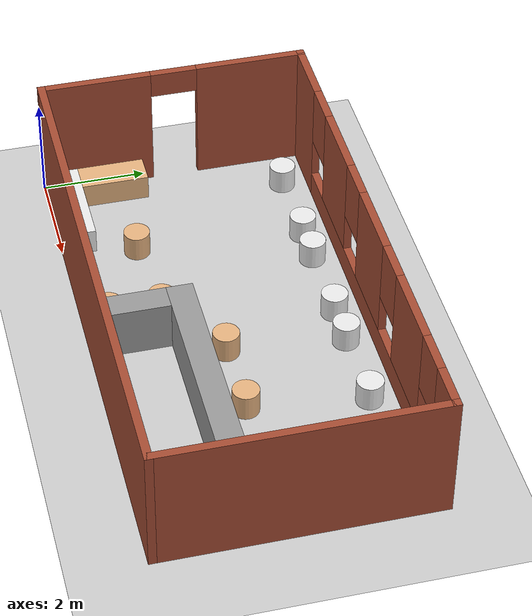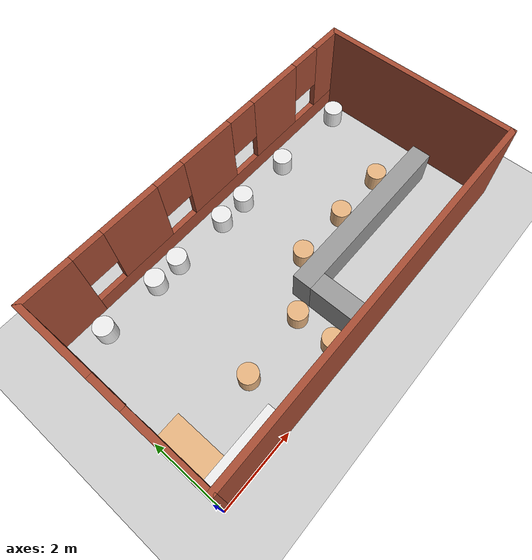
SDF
<sdf version="1.6">
 <world name="default">
  <light name="sun" type="directional">
   <pose>0 0 10 0 -0 0</pose>
   <diffuse>0.8 0.8 0.8 1</diffuse>
   <specular>0.2 0.2 0.2 1</specular>
   <attenuation>
    <range>1000</range>
    <constant>0.9</constant>
    <linear>0.01</linear>
    <quadratic>0.001</quadratic>
   </attenuation>
   <direction>-0.5 0.1 -0.9</direction>
  </light>
  <model name="ground_plane">
   <static>1</static>
   <link name="link">
    <collision name="collision">
     <geometry><plane><normal>0 0 1</normal><size>100 100</size></plane></geometry>
     <surface>
      <contact><collide_bitmask>65535</collide_bitmask></contact>
      <friction><ode><mu>100</mu><mu2>50</mu2></ode></friction>
     </surface>
    </collision>
    <visual name="visual">
     <cast_shadows>0</cast_shadows>
     <geometry><plane><normal>0 0 1</normal><size>100 100</size></plane></geometry>
     <material>
      <script><uri>file://media/materials/scripts/gazebo.material</uri><name>Gazebo/Grey</name></script>
     </material>
    </visual>
   </link>
  </model>
  <gravity>0 0 -9.8</gravity>
  <magnetic_field>6e-06 2.3e-05 -4.2e-05</magnetic_field>
  <atmosphere type="adiabatic"/>
  <physics name="default_physics" default="0" type="ode">
   <max_step_size>0.001</max_step_size>
   <real_time_factor>1</real_time_factor>
   <real_time_update_rate>1000</real_time_update_rate>
  </physics>
  <scene><ambient>0.4 0.4 0.4 1</ambient><background>0.7 0.7 0.7 1</background><shadows>1</shadows></scene>
  <audio><device>default</device></audio>
  <spherical_coordinates>
   <surface_model>EARTH_WGS84</surface_model>
   <latitude_deg>0</latitude_deg>
   <longitude_deg>0</longitude_deg>
   <elevation>0</elevation>
   <heading_deg>0</heading_deg>
  </spherical_coordinates>
  <model name="cafe1">
   <model name="cafe">
    <pose>1e-06 1e-06 0 0 -0 0</pose>
    <link name="Wall_0">
     <pose>-0 2.55 0 0 -0 0</pose>
     <visual name="Wall_0_Visual_0">
      <pose>-4.31575 0 1.25 0 -0 0</pose>
      <geometry><box><size>1.3685 0.15 2.5</size></box></geometry>
      <material>
       <script><uri>file://media/materials/scripts/gazebo.material</uri><name>Gazebo/Bricks</name></script>
       <ambient>1 1 1 1</ambient>
      </material>
      <meta><layer>0</layer></meta>
     </visual>
     <collision name="Wall_0_Collision_0">
      <geometry><box><size>1.3685 0.15 2.5</size></box></geometry>
      <pose>-4.31575 0 1.25 0 -0 0</pose>
     </collision>
     <visual name="Wall_0_Visual_1">
      <pose>0.684248 0 0.25 0 -0 0</pose>
      <geometry><box><size>8.6315 0.15 0.5</size></box></geometry>
      <material>
       <script><uri>file://media/materials/scripts/gazebo.material</uri><name>Gazebo/Bricks</name></script>
       <ambient>1 1 1 1</ambient>
      </material>
      <meta><layer>0</layer></meta>
     </visual>
     <collision name="Wall_0_Collision_1">
      <geometry><box><size>8.6315 0.15 0.5</size></box></geometry>
      <pose>0.684248 0 0.25 0 -0 0</pose>
     </collision>
     <visual name="Wall_0_Visual_2">
      <pose>-2.0815 0 1.5 0 -0 0</pose>
      <geometry><box><size>1.5 0.15 2</size></box></geometry>
      <material>
       <script><uri>file://media/materials/scripts/gazebo.material</uri><name>Gazebo/Bricks</name></script>
       <ambient>1 1 1 1</ambient>
      </material>
      <meta><layer>0</layer></meta>
     </visual>
     <collision name="Wall_0_Collision_2">
      <geometry><box><size>1.5 0.15 2</size></box></geometry>
      <pose>-2.0815 0 1.5 0 -0 0</pose>
     </collision>
     <visual name="Wall_0_Visual_3">
      <pose>0.218496 0 1.5 0 -0 0</pose>
      <geometry><box><size>1.5 0.15 2</size></box></geometry>
      <material>
       <script><uri>file://media/materials/scripts/gazebo.material</uri><name>Gazebo/Bricks</name></script>
       <ambient>1 1 1 1</ambient>
      </material>
      <meta><layer>0</layer></meta>
     </visual>
     <collision name="Wall_0_Collision_3">
      <geometry><box><size>1.5 0.15 2</size></box></geometry>
      <pose>0.218496 0 1.5 0 -0 0</pose>
     </collision>
     <visual name="Wall_0_Visual_4">
      <pose>2.5385 0 1.5 0 -0 0</pose>
      <geometry><box><size>1.54 0.15 2</size></box></geometry>
      <material>
       <script><uri>file://media/materials/scripts/gazebo.material</uri><name>Gazebo/Bricks</name></script>
       <ambient>1 1 1 1</ambient>
      </material>
      <meta><layer>0</layer></meta>
     </visual>
     <collision name="Wall_0_Collision_4">
      <geometry><box><size>1.54 0.15 2</size></box></geometry>
      <pose>2.5385 0 1.5 0 -0 0</pose>
     </collision>
     <visual name="Wall_0_Visual_5">
      <pose>4.55425 0 1.5 0 -0 0</pose>
      <geometry><box><size>0.891504 0.15 2</size></box></geometry>
      <material>
       <script><uri>file://media/materials/scripts/gazebo.material</uri><name>Gazebo/Bricks</name></script>
       <ambient>1 1 1 1</ambient>
      </material>
      <meta><layer>0</layer></meta>
     </visual>
     <collision name="Wall_0_Collision_5">
      <geometry><box><size>0.891504 0.15 2</size></box></geometry>
      <pose>4.55425 0 1.5 0 -0 0</pose>
     </collision>
     <visual name="Wall_0_Visual_6">
      <pose>-3.2315 0 1.9 0 -0 0</pose>
      <geometry><box><size>0.8 0.15 1.2</size></box></geometry>
      <material>
       <script><uri>file://media/materials/scripts/gazebo.material</uri><name>Gazebo/Bricks</name></script>
       <ambient>1 1 1 1</ambient>
      </material>
      <meta><layer>0</layer></meta>
     </visual>
     <collision name="Wall_0_Collision_6">
      <geometry><box><size>0.8 0.15 1.2</size></box></geometry>
      <pose>-3.2315 0 1.9 0 -0 0</pose>
     </collision>
     <visual name="Wall_0_Visual_7">
      <pose>-0.931504 0 1.9 0 -0 0</pose>
      <geometry><box><size>0.8 0.15 1.2</size></box></geometry>
      <material>
       <script><uri>file://media/materials/scripts/gazebo.material</uri><name>Gazebo/Bricks</name></script>
       <ambient>1 1 1 1</ambient>
      </material>
      <meta><layer>0</layer></meta>
     </visual>
     <collision name="Wall_0_Collision_7">
      <geometry><box><size>0.8 0.15 1.2</size></box></geometry>
      <pose>-0.931504 0 1.9 0 -0 0</pose>
     </collision>
     <visual name="Wall_0_Visual_8">
      <pose>1.3685 0 1.9 0 -0 0</pose>
      <geometry><box><size>0.8 0.15 1.2</size></box></geometry>
      <material>
       <script><uri>file://media/materials/scripts/gazebo.material</uri><name>Gazebo/Bricks</name></script>
       <ambient>1 1 1 1</ambient>
      </material>
      <meta><layer>0</layer></meta>
     </visual>
     <collision name="Wall_0_Collision_8">
      <geometry><box><size>0.8 0.15 1.2</size></box></geometry>
      <pose>1.3685 0 1.9 0 -0 0</pose>
     </collision>
     <visual name="Wall_0_Visual_9">
      <pose>3.7085 0 1.9 0 -0 0</pose>
      <geometry><box><size>0.8 0.15 1.2</size></box></geometry>
      <material>
       <script><uri>file://media/materials/scripts/gazebo.material</uri><name>Gazebo/Bricks</name></script>
       <ambient>1 1 1 1</ambient>
      </material>
      <meta><layer>0</layer></meta>
     </visual>
     <collision name="Wall_0_Collision_9">
      <geometry><box><size>0.8 0.15 1.2</size></box></geometry>
      <pose>3.7085 0 1.9 0 -0 0</pose>
     </collision>
    </link>
    <link name="Wall_2">
     <collision name="Wall_2_Collision">
      <geometry><box><size>5.25 0.15 2.5</size></box></geometry>
      <pose>0 0 1.25 0 -0 0</pose>
     </collision>
     <visual name="Wall_2_Visual">
      <pose>0 0 1.25 0 -0 0</pose>
      <geometry><box><size>5.25 0.15 2.5</size></box></geometry>
      <material>
       <script><uri>file://media/materials/scripts/gazebo.material</uri><name>Gazebo/Bricks</name></script>
       <ambient>1 1 1 1</ambient>
      </material>
      <meta><layer>0</layer></meta>
     </visual>
     <pose>4.925 0 0 0 -0 -1.5708</pose>
    </link>
    <link name="Wall_3">
     <collision name="Wall_3_Collision">
      <geometry><box><size>10 0.15 2.5</size></box></geometry>
      <pose>0 0 1.25 0 -0 0</pose>
     </collision>
     <visual name="Wall_3_Visual">
      <pose>0 0 1.25 0 -0 0</pose>
      <geometry><box><size>10 0.15 2.5</size></box></geometry>
      <material>
       <script><uri>file://media/materials/scripts/gazebo.material</uri><name>Gazebo/Bricks</name></script>
       <ambient>1 1 1 1</ambient>
      </material>
      <meta><layer>0</layer></meta>
     </visual>
     <pose>-0 -2.55 0 0 -0 3.14159</pose>
    </link>
    <link name="Wall_5">
     <pose>-4.925 0 0 0 -0 -1.5708</pose>
     <visual name="Wall_5_Visual_0">
      <pose>-1.54247 0 1.25 0 -0 0</pose>
      <geometry><box><size>2.16506 0.15 2.5</size></box></geometry>
      <material>
       <script><uri>file://media/materials/scripts/gazebo.material</uri><name>Gazebo/Bricks</name></script>
       <ambient>1 1 1 1</ambient>
      </material>
      <meta><layer>0</layer></meta>
     </visual>
     <collision name="Wall_5_Collision_0">
      <geometry><box><size>2.16506 0.15 2.5</size></box></geometry>
      <pose>-1.54247 0 1.25 0 -0 0</pose>
     </collision>
     <visual name="Wall_5_Visual_1">
      <pose>1.53253 0 1.25 0 -0 0</pose>
      <geometry><box><size>2.18494 0.15 2.5</size></box></geometry>
      <material>
       <script><uri>file://media/materials/scripts/gazebo.material</uri><name>Gazebo/Bricks</name></script>
       <ambient>1 1 1 1</ambient>
      </material>
      <meta><layer>0</layer></meta>
     </visual>
     <collision name="Wall_5_Collision_1">
      <geometry><box><size>2.18494 0.15 2.5</size></box></geometry>
      <pose>1.53253 0 1.25 0 -0 0</pose>
     </collision>
     <visual name="Wall_5_Visual_2">
      <pose>-0.009942 0 2.25 0 -0 0</pose>
      <geometry><box><size>0.9 0.15 0.5</size></box></geometry>
      <material>
       <script><uri>file://media/materials/scripts/gazebo.material</uri><name>Gazebo/Bricks</name></script>
       <ambient>1 1 1 1</ambient>
      </material>
      <meta><layer>0</layer></meta>
     </visual>
     <collision name="Wall_5_Collision_2">
      <geometry><box><size>0.9 0.15 0.5</size></box></geometry>
      <pose>-0.009942 0 2.25 0 -0 0</pose>
     </collision>
    </link>
    <link name="Wall_7">
     <collision name="Wall_7_Collision">
      <geometry><box><size>4.81 0.5 1</size></box></geometry>
      <pose>0 0 0.5 0 -0 0</pose>
     </collision>
     <visual name="Wall_7_Visual">
      <pose>0 0 0.5 0 -0 0</pose>
      <geometry><box><size>4.81 0.5 1</size></box></geometry>
      <material>
       <script><uri>file://media/materials/scripts/gazebo.material</uri><name>Gazebo/Grey</name></script>
       <ambient>1 1 1 1</ambient>
      </material>
      <meta><layer>0</layer></meta>
     </visual>
     <pose>1.9038 -0.870275 0 0 -0 0</pose>
    </link>
    <link name="Wall_9">
     <collision name="Wall_9_Collision">
      <geometry><box><size>2 0.5 1</size></box></geometry>
      <pose>0 0 0.5 0 -0 0</pose>
     </collision>
     <visual name="Wall_9_Visual">
      <pose>0 0 0.5 0 -0 0</pose>
      <geometry><box><size>2 0.5 1</size></box></geometry>
      <material>
       <script><uri>file://media/materials/scripts/gazebo.material</uri><name>Gazebo/Grey</name></script>
       <ambient>1 1 1 1</ambient>
      </material>
      <meta><layer>0</layer></meta>
     </visual>
     <pose>-0.2512 -1.62027 0 0 -0 -1.5708</pose>
    </link>
    <static>1</static>
   </model>
   <static>0</static>
   <pose>5.01694 2.61607 0 0 -0 0</pose>
  </model>
  <model name="chair">
   <link name="link_1">
    <inertial>
     <mass>1</mass>
     <inertia><ixx>0.145833</ixx><ixy>0</ixy><ixz>0</ixz><iyy>0.145833</iyy><iyz>0</iyz><izz>0.125</izz></inertia>
    </inertial>
    <visual name="visual">
     <geometry><cylinder><radius>0.25</radius><length>0.5</length></cylinder></geometry>
     <material>
      <lighting>1</lighting>
      <script><uri>file://media/materials/scripts/gazebo.material</uri><name>Gazebo/White</name></script>
      <shader type="vertex"><normal_map>__default__</normal_map></shader>
      <ambient>0.9 0.7 0.5 1</ambient>
      <diffuse>0.7 0.7 0.7 1</diffuse>
      <specular>0.01 0.01 0.01 1</specular>
      <emissive>0 0 0 1</emissive>
     </material>
    </visual>
    <collision name="collision">
     <geometry><cylinder><radius>0.25</radius><length>0.5</length></cylinder></geometry>
     <surface>
      <friction>
       <ode><mu>1</mu><mu2>1</mu2><fdir1>0 0 0</fdir1><slip1>0</slip1><slip2>0</slip2></ode>
       <torsional>
        <coefficient>1</coefficient>
        <patch_radius>0</patch_radius>
        <surface_radius>0</surface_radius>
        <use_patch_radius>1</use_patch_radius>
        <ode><slip>0</slip></ode>
       </torsional>
      </friction>
      <bounce><restitution_coefficient>0</restitution_coefficient><threshold>1e+06</threshold></bounce>
      <contact>
       <collide_without_contact>0</collide_without_contact>
       <collide_without_contact_bitmask>1</collide_without_contact_bitmask>
       <collide_bitmask>1</collide_bitmask>
       <ode>
        <soft_cfm>0</soft_cfm>
        <soft_erp>0.2</soft_erp>
        <kp>1e+13</kp>
        <kd>1</kd>
        <max_vel>0.01</max_vel>
        <min_depth>0</min_depth>
       </ode>
       <bullet>
        <split_impulse>1</split_impulse>
        <split_impulse_penetration_threshold>-0.01</split_impulse_penetration_threshold>
        <soft_cfm>0</soft_cfm>
        <soft_erp>0.2</soft_erp>
        <kp>1e+13</kp>
        <kd>1</kd>
       </bullet>
      </contact>
     </surface>
    </collision>
   </link>
   <link name="link_1_clone">
    <inertial>
     <mass>1</mass>
     <inertia><ixx>0.145833</ixx><ixy>0</ixy><ixz>0</ixz><iyy>0.145833</iyy><iyz>0</iyz><izz>0.125</izz></inertia>
    </inertial>
    <pose>-2.2 0 0 0 -0 0</pose>
    <visual name="visual">
     <geometry><cylinder><radius>0.25</radius><length>0.5</length></cylinder></geometry>
     <material>
      <lighting>1</lighting>
      <script><uri>file://media/materials/scripts/gazebo.material</uri><name>Gazebo/White</name></script>
      <shader type="vertex"><normal_map>__default__</normal_map></shader>
      <ambient>0.9 0.7 0.5 1</ambient>
      <diffuse>0.7 0.7 0.7 1</diffuse>
      <specular>0.01 0.01 0.01 1</specular>
      <emissive>0 0 0 1</emissive>
     </material>
    </visual>
    <collision name="collision">
     <geometry><cylinder><radius>0.25</radius><length>0.5</length></cylinder></geometry>
     <surface>
      <friction>
       <ode><mu>1</mu><mu2>1</mu2><fdir1>0 0 0</fdir1><slip1>0</slip1><slip2>0</slip2></ode>
       <torsional>
        <coefficient>1</coefficient>
        <patch_radius>0</patch_radius>
        <surface_radius>0</surface_radius>
        <use_patch_radius>1</use_patch_radius>
        <ode><slip>0</slip></ode>
       </torsional>
      </friction>
      <bounce><restitution_coefficient>0</restitution_coefficient><threshold>1e+06</threshold></bounce>
      <contact>
       <collide_without_contact>0</collide_without_contact>
       <collide_without_contact_bitmask>1</collide_without_contact_bitmask>
       <collide_bitmask>1</collide_bitmask>
       <ode>
        <soft_cfm>0</soft_cfm>
        <soft_erp>0.2</soft_erp>
        <kp>1e+13</kp>
        <kd>1</kd>
        <max_vel>0.01</max_vel>
        <min_depth>0</min_depth>
       </ode>
       <bullet>
        <split_impulse>1</split_impulse>
        <split_impulse_penetration_threshold>-0.01</split_impulse_penetration_threshold>
        <soft_cfm>0</soft_cfm>
        <soft_erp>0.2</soft_erp>
        <kp>1e+13</kp>
        <kd>1</kd>
       </bullet>
      </contact>
     </surface>
    </collision>
   </link>
   <link name="link_1_clone_0">
    <inertial>
     <mass>1</mass>
     <inertia><ixx>0.145833</ixx><ixy>0</ixy><ixz>0</ixz><iyy>0.145833</iyy><iyz>0</iyz><izz>0.125</izz></inertia>
    </inertial>
    <pose>-3.75 0 0 0 -0 0</pose>
    <visual name="visual">
     <geometry><cylinder><radius>0.25</radius><length>0.5</length></cylinder></geometry>
     <material>
      <lighting>1</lighting>
      <script><uri>file://media/materials/scripts/gazebo.material</uri><name>Gazebo/White</name></script>
      <shader type="vertex"><normal_map>__default__</normal_map></shader>
      <ambient>0.9 0.7 0.5 1</ambient>
      <diffuse>0.7 0.7 0.7 1</diffuse>
      <specular>0.01 0.01 0.01 1</specular>
      <emissive>0 0 0 1</emissive>
     </material>
    </visual>
    <collision name="collision">
     <geometry><cylinder><radius>0.25</radius><length>0.5</length></cylinder></geometry>
     <surface>
      <friction>
       <ode><mu>1</mu><mu2>1</mu2><fdir1>0 0 0</fdir1><slip1>0</slip1><slip2>0</slip2></ode>
       <torsional>
        <coefficient>1</coefficient>
        <patch_radius>0</patch_radius>
        <surface_radius>0</surface_radius>
        <use_patch_radius>1</use_patch_radius>
        <ode><slip>0</slip></ode>
       </torsional>
      </friction>
      <bounce><restitution_coefficient>0</restitution_coefficient><threshold>1e+06</threshold></bounce>
      <contact>
       <collide_without_contact>0</collide_without_contact>
       <collide_without_contact_bitmask>1</collide_without_contact_bitmask>
       <collide_bitmask>1</collide_bitmask>
       <ode>
        <soft_cfm>0</soft_cfm>
        <soft_erp>0.2</soft_erp>
        <kp>1e+13</kp>
        <kd>1</kd>
        <max_vel>0.01</max_vel>
        <min_depth>0</min_depth>
       </ode>
       <bullet>
        <split_impulse>1</split_impulse>
        <split_impulse_penetration_threshold>-0.01</split_impulse_penetration_threshold>
        <soft_cfm>0</soft_cfm>
        <soft_erp>0.2</soft_erp>
        <kp>1e+13</kp>
        <kd>1</kd>
       </bullet>
      </contact>
     </surface>
    </collision>
   </link>
   <link name="link_1_clone_0_clone">
    <inertial>
     <mass>1</mass>
     <inertia><ixx>0.145833</ixx><ixy>0</ixy><ixz>0</ixz><iyy>0.145833</iyy><iyz>0</iyz><izz>0.125</izz></inertia>
    </inertial>
    <pose>-4.55 0 0 0 -0 0</pose>
    <visual name="visual">
     <geometry><cylinder><radius>0.25</radius><length>0.5</length></cylinder></geometry>
     <material>
      <lighting>1</lighting>
      <script><uri>file://media/materials/scripts/gazebo.material</uri><name>Gazebo/White</name></script>
      <shader type="vertex"><normal_map>__default__</normal_map></shader>
      <ambient>0.9 0.7 0.5 1</ambient>
      <diffuse>0.7 0.7 0.7 1</diffuse>
      <specular>0.01 0.01 0.01 1</specular>
      <emissive>0 0 0 1</emissive>
     </material>
    </visual>
    <collision name="collision">
     <geometry><cylinder><radius>0.25</radius><length>0.5</length></cylinder></geometry>
     <surface>
      <friction>
       <ode><mu>1</mu><mu2>1</mu2><fdir1>0 0 0</fdir1><slip1>0</slip1><slip2>0</slip2></ode>
       <torsional>
        <coefficient>1</coefficient>
        <patch_radius>0</patch_radius>
        <surface_radius>0</surface_radius>
        <use_patch_radius>1</use_patch_radius>
        <ode><slip>0</slip></ode>
       </torsional>
      </friction>
      <bounce><restitution_coefficient>0</restitution_coefficient><threshold>1e+06</threshold></bounce>
      <contact>
       <collide_without_contact>0</collide_without_contact>
       <collide_without_contact_bitmask>1</collide_without_contact_bitmask>
       <collide_bitmask>1</collide_bitmask>
       <ode>
        <soft_cfm>0</soft_cfm>
        <soft_erp>0.2</soft_erp>
        <kp>1e+13</kp>
        <kd>1</kd>
        <max_vel>0.01</max_vel>
        <min_depth>0</min_depth>
       </ode>
       <bullet>
        <split_impulse>1</split_impulse>
        <split_impulse_penetration_threshold>-0.01</split_impulse_penetration_threshold>
        <soft_cfm>0</soft_cfm>
        <soft_erp>0.2</soft_erp>
        <kp>1e+13</kp>
        <kd>1</kd>
       </bullet>
      </contact>
     </surface>
    </collision>
   </link>
   <link name="link_1_clone_0_clone_clone">
    <inertial>
     <mass>1</mass>
     <inertia><ixx>0.145833</ixx><ixy>0</ixy><ixz>0</ixz><iyy>0.145833</iyy><iyz>0</iyz><izz>0.125</izz></inertia>
    </inertial>
    <pose>-6.1 0 0 0 -0 0</pose>
    <visual name="visual">
     <geometry><cylinder><radius>0.25</radius><length>0.5</length></cylinder></geometry>
     <material>
      <lighting>1</lighting>
      <script><uri>file://media/materials/scripts/gazebo.material</uri><name>Gazebo/White</name></script>
      <shader type="vertex"><normal_map>__default__</normal_map></shader>
      <ambient>0.9 0.7 0.5 1</ambient>
      <diffuse>0.7 0.7 0.7 1</diffuse>
      <specular>0.01 0.01 0.01 1</specular>
      <emissive>0 0 0 1</emissive>
     </material>
    </visual>
    <collision name="collision">
     <geometry><cylinder><radius>0.25</radius><length>0.5</length></cylinder></geometry>
     <surface>
      <friction>
       <ode><mu>1</mu><mu2>1</mu2><fdir1>0 0 0</fdir1><slip1>0</slip1><slip2>0</slip2></ode>
       <torsional>
        <coefficient>1</coefficient>
        <patch_radius>0</patch_radius>
        <surface_radius>0</surface_radius>
        <use_patch_radius>1</use_patch_radius>
        <ode><slip>0</slip></ode>
       </torsional>
      </friction>
      <bounce><restitution_coefficient>0</restitution_coefficient><threshold>1e+06</threshold></bounce>
      <contact>
       <collide_without_contact>0</collide_without_contact>
       <collide_without_contact_bitmask>1</collide_without_contact_bitmask>
       <collide_bitmask>1</collide_bitmask>
       <ode>
        <soft_cfm>0</soft_cfm>
        <soft_erp>0.2</soft_erp>
        <kp>1e+13</kp>
        <kd>1</kd>
        <max_vel>0.01</max_vel>
        <min_depth>0</min_depth>
       </ode>
       <bullet>
        <split_impulse>1</split_impulse>
        <split_impulse_penetration_threshold>-0.01</split_impulse_penetration_threshold>
        <soft_cfm>0</soft_cfm>
        <soft_erp>0.2</soft_erp>
        <kp>1e+13</kp>
        <kd>1</kd>
       </bullet>
      </contact>
     </surface>
    </collision>
   </link>
   <link name="link_1_clone_0_clone_clone_clone">
    <inertial>
     <mass>1</mass>
     <inertia><ixx>0.145833</ixx><ixy>0</ixy><ixz>0</ixz><iyy>0.145833</iyy><iyz>0</iyz><izz>0.125</izz></inertia>
    </inertial>
    <pose>-6.83 0 0 0 -0 0</pose>
    <visual name="visual">
     <geometry><cylinder><radius>0.25</radius><length>0.5</length></cylinder></geometry>
     <material>
      <lighting>1</lighting>
      <script><uri>file://media/materials/scripts/gazebo.material</uri><name>Gazebo/White</name></script>
      <shader type="vertex"><normal_map>__default__</normal_map></shader>
      <ambient>0.9 0.7 0.5 1</ambient>
      <diffuse>0.7 0.7 0.7 1</diffuse>
      <specular>0.01 0.01 0.01 1</specular>
      <emissive>0 0 0 1</emissive>
     </material>
    </visual>
    <collision name="collision">
     <geometry><cylinder><radius>0.25</radius><length>0.5</length></cylinder></geometry>
     <surface>
      <friction>
       <ode><mu>1</mu><mu2>1</mu2><fdir1>0 0 0</fdir1><slip1>0</slip1><slip2>0</slip2></ode>
       <torsional>
        <coefficient>1</coefficient>
        <patch_radius>0</patch_radius>
        <surface_radius>0</surface_radius>
        <use_patch_radius>1</use_patch_radius>
        <ode><slip>0</slip></ode>
       </torsional>
      </friction>
      <bounce><restitution_coefficient>0</restitution_coefficient><threshold>1e+06</threshold></bounce>
      <contact>
       <collide_without_contact>0</collide_without_contact>
       <collide_without_contact_bitmask>1</collide_without_contact_bitmask>
       <collide_bitmask>1</collide_bitmask>
       <ode>
        <soft_cfm>0</soft_cfm>
        <soft_erp>0.2</soft_erp>
        <kp>1e+13</kp>
        <kd>1</kd>
        <max_vel>0.01</max_vel>
        <min_depth>0</min_depth>
       </ode>
       <bullet>
        <split_impulse>1</split_impulse>
        <split_impulse_penetration_threshold>-0.01</split_impulse_penetration_threshold>
        <soft_cfm>0</soft_cfm>
        <soft_erp>0.2</soft_erp>
        <kp>1e+13</kp>
        <kd>1</kd>
       </bullet>
      </contact>
     </surface>
    </collision>
   </link>
   <link name="link_1_clone_0_clone_clone_clone_clone">
    <inertial>
     <mass>1</mass>
     <inertia><ixx>0.145833</ixx><ixy>0</ixy><ixz>0</ixz><iyy>0.145833</iyy><iyz>0</iyz><izz>0.125</izz></inertia>
    </inertial>
    <pose>-8.4 0 0 0 -0 0</pose>
    <visual name="visual">
     <geometry><cylinder><radius>0.25</radius><length>0.5</length></cylinder></geometry>
     <material>
      <lighting>1</lighting>
      <script><uri>file://media/materials/scripts/gazebo.material</uri><name>Gazebo/White</name></script>
      <shader type="vertex"><normal_map>__default__</normal_map></shader>
      <ambient>0.9 0.7 0.5 1</ambient>
      <diffuse>0.7 0.7 0.7 1</diffuse>
      <specular>0.01 0.01 0.01 1</specular>
      <emissive>0 0 0 1</emissive>
     </material>
    </visual>
    <collision name="collision">
     <geometry><cylinder><radius>0.25</radius><length>0.5</length></cylinder></geometry>
     <surface>
      <friction>
       <ode><mu>1</mu><mu2>1</mu2><fdir1>0 0 0</fdir1><slip1>0</slip1><slip2>0</slip2></ode>
       <torsional>
        <coefficient>1</coefficient>
        <patch_radius>0</patch_radius>
        <surface_radius>0</surface_radius>
        <use_patch_radius>1</use_patch_radius>
        <ode><slip>0</slip></ode>
       </torsional>
      </friction>
      <bounce><restitution_coefficient>0</restitution_coefficient><threshold>1e+06</threshold></bounce>
      <contact>
       <collide_without_contact>0</collide_without_contact>
       <collide_without_contact_bitmask>1</collide_without_contact_bitmask>
       <collide_bitmask>1</collide_bitmask>
       <ode>
        <soft_cfm>0</soft_cfm>
        <soft_erp>0.2</soft_erp>
        <kp>1e+13</kp>
        <kd>1</kd>
        <max_vel>0.01</max_vel>
        <min_depth>0</min_depth>
       </ode>
       <bullet>
        <split_impulse>1</split_impulse>
        <split_impulse_penetration_threshold>-0.01</split_impulse_penetration_threshold>
        <soft_cfm>0</soft_cfm>
        <soft_erp>0.2</soft_erp>
        <kp>1e+13</kp>
        <kd>1</kd>
       </bullet>
      </contact>
     </surface>
    </collision>
   </link>
   <static>0</static>
   <pose>9.4 4.6 0.25 0 -0 0</pose>
  </model>
  <model name="chair2">
   <link name="link_3">
    <inertial>
     <mass>1</mass>
     <inertia>
      <ixx>0.166667</ixx>
      <ixy>0</ixy>
      <ixz>0</ixz>
      <iyy>0.166667</iyy>
      <iyz>0</iyz>
      <izz>0.166667</izz>
     </inertia>
    </inertial>
    <pose>-1.31 -0.66 0 0 -0 0</pose>
    <visual name="visual">
     <geometry><box><size>2 0.6 0.5</size></box></geometry>
     <material>
      <lighting>1</lighting>
      <script><uri>file://media/materials/scripts/gazebo.material</uri><name>Gazebo/White</name></script>
      <shader type="vertex"><normal_map>__default__</normal_map></shader>
      <ambient>0.9 0.7 0.5 1</ambient>
      <diffuse>0.7 0.7 0.7 1</diffuse>
      <specular>0.01 0.01 0.01 1</specular>
      <emissive>0 0 0 1</emissive>
     </material>
    </visual>
    <collision name="collision">
     <geometry><box><size>2 0.6 0.5</size></box></geometry>
     <surface>
      <friction>
       <ode><mu>1</mu><mu2>1</mu2><fdir1>0 0 0</fdir1><slip1>0</slip1><slip2>0</slip2></ode>
       <torsional>
        <coefficient>1</coefficient>
        <patch_radius>0</patch_radius>
        <surface_radius>0</surface_radius>
        <use_patch_radius>1</use_patch_radius>
        <ode><slip>0</slip></ode>
       </torsional>
      </friction>
      <bounce><restitution_coefficient>0</restitution_coefficient><threshold>1e+06</threshold></bounce>
      <contact>
       <collide_without_contact>0</collide_without_contact>
       <collide_without_contact_bitmask>1</collide_without_contact_bitmask>
       <collide_bitmask>1</collide_bitmask>
       <ode>
        <soft_cfm>0</soft_cfm>
        <soft_erp>0.2</soft_erp>
        <kp>1e+13</kp>
        <kd>1</kd>
        <max_vel>0.01</max_vel>
        <min_depth>0</min_depth>
       </ode>
       <bullet>
        <split_impulse>1</split_impulse>
        <split_impulse_penetration_threshold>-0.01</split_impulse_penetration_threshold>
        <soft_cfm>0</soft_cfm>
        <soft_erp>0.2</soft_erp>
        <kp>1e+13</kp>
        <kd>1</kd>
       </bullet>
      </contact>
     </surface>
    </collision>
   </link>
   <link name="link_4">
    <inertial>
     <mass>1</mass>
     <inertia>
      <ixx>0.166667</ixx>
      <ixy>0</ixy>
      <ixz>0</ixz>
      <iyy>0.166667</iyy>
      <iyz>0</iyz>
      <izz>0.166667</izz>
     </inertia>
    </inertial>
    <pose>-1.96 0.29 0 0 -0 0</pose>
    <visual name="visual">
     <geometry><box><size>0.6 1.3 0.5</size></box></geometry>
     <material>
      <lighting>1</lighting>
      <script><uri>file://media/materials/scripts/gazebo.material</uri><name>Gazebo/Grey</name></script>
      <shader type="vertex"><normal_map>__default__</normal_map></shader>
      <ambient>0.9 0.7 0.5 1</ambient>
      <diffuse>0.7 0.7 0.7 1</diffuse>
      <specular>0.01 0.01 0.01 1</specular>
      <emissive>0 0 0 1</emissive>
     </material>
    </visual>
    <collision name="collision">
     <geometry><box><size>0.6 1.3 0.5</size></box></geometry>
     <surface>
      <friction>
       <ode><mu>1</mu><mu2>1</mu2><fdir1>0 0 0</fdir1><slip1>0</slip1><slip2>0</slip2></ode>
       <torsional>
        <coefficient>1</coefficient>
        <patch_radius>0</patch_radius>
        <surface_radius>0</surface_radius>
        <use_patch_radius>1</use_patch_radius>
        <ode><slip>0</slip></ode>
       </torsional>
      </friction>
      <bounce><restitution_coefficient>0</restitution_coefficient><threshold>1e+06</threshold></bounce>
      <contact>
       <collide_without_contact>0</collide_without_contact>
       <collide_without_contact_bitmask>1</collide_without_contact_bitmask>
       <collide_bitmask>1</collide_bitmask>
       <ode>
        <soft_cfm>0</soft_cfm>
        <soft_erp>0.2</soft_erp>
        <kp>1e+13</kp>
        <kd>1</kd>
        <max_vel>0.01</max_vel>
        <min_depth>0</min_depth>
       </ode>
       <bullet>
        <split_impulse>1</split_impulse>
        <split_impulse_penetration_threshold>-0.01</split_impulse_penetration_threshold>
        <soft_cfm>0</soft_cfm>
        <soft_erp>0.2</soft_erp>
        <kp>1e+13</kp>
        <kd>1</kd>
       </bullet>
      </contact>
     </surface>
    </collision>
   </link>
   <link name="link_5">
    <inertial>
     <mass>1</mass>
     <inertia><ixx>0.145833</ixx><ixy>0</ixy><ixz>0</ixz><iyy>0.145833</iyy><iyz>0</iyz><izz>0.125</izz></inertia>
    </inertial>
    <pose>-0.11 0.39 0 0 -0 0</pose>
    <visual name="visual">
     <geometry><cylinder><radius>0.25</radius><length>0.5</length></cylinder></geometry>
     <material>
      <lighting>1</lighting>
      <script><uri>file://media/materials/scripts/gazebo.material</uri><name>Gazebo/Grey</name></script>
      <shader type="vertex"><normal_map>__default__</normal_map></shader>
      <ambient>0.9 0.7 0.5 1</ambient>
      <diffuse>0.7 0.7 0.7 1</diffuse>
      <specular>0.01 0.01 0.01 1</specular>
      <emissive>0 0 0 1</emissive>
     </material>
    </visual>
    <collision name="collision">
     <geometry><cylinder><radius>0.25</radius><length>0.5</length></cylinder></geometry>
     <surface>
      <friction>
       <ode><mu>1</mu><mu2>1</mu2><fdir1>0 0 0</fdir1><slip1>0</slip1><slip2>0</slip2></ode>
       <torsional>
        <coefficient>1</coefficient>
        <patch_radius>0</patch_radius>
        <surface_radius>0</surface_radius>
        <use_patch_radius>1</use_patch_radius>
        <ode><slip>0</slip></ode>
       </torsional>
      </friction>
      <bounce><restitution_coefficient>0</restitution_coefficient><threshold>1e+06</threshold></bounce>
      <contact>
       <collide_without_contact>0</collide_without_contact>
       <collide_without_contact_bitmask>1</collide_without_contact_bitmask>
       <collide_bitmask>1</collide_bitmask>
       <ode>
        <soft_cfm>0</soft_cfm>
        <soft_erp>0.2</soft_erp>
        <kp>1e+13</kp>
        <kd>1</kd>
        <max_vel>0.01</max_vel>
        <min_depth>0</min_depth>
       </ode>
       <bullet>
        <split_impulse>1</split_impulse>
        <split_impulse_penetration_threshold>-0.01</split_impulse_penetration_threshold>
        <soft_cfm>0</soft_cfm>
        <soft_erp>0.2</soft_erp>
        <kp>1e+13</kp>
        <kd>1</kd>
       </bullet>
      </contact>
     </surface>
    </collision>
   </link>
   <link name="link_5_clone">
    <inertial>
     <mass>1</mass>
     <inertia><ixx>0.145833</ixx><ixy>0</ixy><ixz>0</ixz><iyy>0.145833</iyy><iyz>0</iyz><izz>0.125</izz></inertia>
    </inertial>
    <pose>1.69 -0.51 0 0 -0 0</pose>
    <visual name="visual">
     <geometry><cylinder><radius>0.25</radius><length>0.5</length></cylinder></geometry>
     <material>
      <lighting>1</lighting>
      <script><uri>file://media/materials/scripts/gazebo.material</uri><name>Gazebo/Grey</name></script>
      <shader type="vertex"><normal_map>__default__</normal_map></shader>
      <ambient>0.9 0.7 0.5 1</ambient>
      <diffuse>0.7 0.7 0.7 1</diffuse>
      <specular>0.01 0.01 0.01 1</specular>
      <emissive>0 0 0 1</emissive>
     </material>
    </visual>
    <collision name="collision">
     <geometry><cylinder><radius>0.25</radius><length>0.5</length></cylinder></geometry>
     <surface>
      <friction>
       <ode><mu>1</mu><mu2>1</mu2><fdir1>0 0 0</fdir1><slip1>0</slip1><slip2>0</slip2></ode>
       <torsional>
        <coefficient>1</coefficient>
        <patch_radius>0</patch_radius>
        <surface_radius>0</surface_radius>
        <use_patch_radius>1</use_patch_radius>
        <ode><slip>0</slip></ode>
       </torsional>
      </friction>
      <bounce><restitution_coefficient>0</restitution_coefficient><threshold>1e+06</threshold></bounce>
      <contact>
       <collide_without_contact>0</collide_without_contact>
       <collide_without_contact_bitmask>1</collide_without_contact_bitmask>
       <collide_bitmask>1</collide_bitmask>
       <ode>
        <soft_cfm>0</soft_cfm>
        <soft_erp>0.2</soft_erp>
        <kp>1e+13</kp>
        <kd>1</kd>
        <max_vel>0.01</max_vel>
        <min_depth>0</min_depth>
       </ode>
       <bullet>
        <split_impulse>1</split_impulse>
        <split_impulse_penetration_threshold>-0.01</split_impulse_penetration_threshold>
        <soft_cfm>0</soft_cfm>
        <soft_erp>0.2</soft_erp>
        <kp>1e+13</kp>
        <kd>1</kd>
       </bullet>
      </contact>
     </surface>
    </collision>
   </link>
   <link name="link_5_clone_0">
    <inertial>
     <mass>1</mass>
     <inertia><ixx>0.145833</ixx><ixy>0</ixy><ixz>0</ixz><iyy>0.145833</iyy><iyz>0</iyz><izz>0.125</izz></inertia>
    </inertial>
    <pose>1.69 0.49 0 0 -0 0</pose>
    <visual name="visual">
     <geometry><cylinder><radius>0.25</radius><length>0.5</length></cylinder></geometry>
     <material>
      <lighting>1</lighting>
      <script><uri>file://media/materials/scripts/gazebo.material</uri><name>Gazebo/Grey</name></script>
      <shader type="vertex"><normal_map>__default__</normal_map></shader>
      <ambient>0.9 0.7 0.5 1</ambient>
      <diffuse>0.7 0.7 0.7 1</diffuse>
      <specular>0.01 0.01 0.01 1</specular>
      <emissive>0 0 0 1</emissive>
     </material>
    </visual>
    <collision name="collision">
     <geometry><cylinder><radius>0.25</radius><length>0.5</length></cylinder></geometry>
     <surface>
      <friction>
       <ode><mu>1</mu><mu2>1</mu2><fdir1>0 0 0</fdir1><slip1>0</slip1><slip2>0</slip2></ode>
       <torsional>
        <coefficient>1</coefficient>
        <patch_radius>0</patch_radius>
        <surface_radius>0</surface_radius>
        <use_patch_radius>1</use_patch_radius>
        <ode><slip>0</slip></ode>
       </torsional>
      </friction>
      <bounce><restitution_coefficient>0</restitution_coefficient><threshold>1e+06</threshold></bounce>
      <contact>
       <collide_without_contact>0</collide_without_contact>
       <collide_without_contact_bitmask>1</collide_without_contact_bitmask>
       <collide_bitmask>1</collide_bitmask>
       <ode>
        <soft_cfm>0</soft_cfm>
        <soft_erp>0.2</soft_erp>
        <kp>1e+13</kp>
        <kd>1</kd>
        <max_vel>0.01</max_vel>
        <min_depth>0</min_depth>
       </ode>
       <bullet>
        <split_impulse>1</split_impulse>
        <split_impulse_penetration_threshold>-0.01</split_impulse_penetration_threshold>
        <soft_cfm>0</soft_cfm>
        <soft_erp>0.2</soft_erp>
        <kp>1e+13</kp>
        <kd>1</kd>
       </bullet>
      </contact>
     </surface>
    </collision>
   </link>
   <link name="link_5_clone_0_clone">
    <inertial>
     <mass>1</mass>
     <inertia><ixx>0.145833</ixx><ixy>0</ixy><ixz>0</ixz><iyy>0.145833</iyy><iyz>0</iyz><izz>0.125</izz></inertia>
    </inertial>
    <pose>6 1.4 0 0 -0 0</pose>
    <visual name="visual">
     <geometry><cylinder><radius>0.25</radius><length>0.5</length></cylinder></geometry>
     <material>
      <lighting>1</lighting>
      <script><uri>file://media/materials/scripts/gazebo.material</uri><name>Gazebo/Grey</name></script>
      <shader type="vertex"><normal_map>__default__</normal_map></shader>
      <ambient>0.9 0.7 0.5 1</ambient>
      <diffuse>0.7 0.7 0.7 1</diffuse>
      <specular>0.01 0.01 0.01 1</specular>
      <emissive>0 0 0 1</emissive>
     </material>
    </visual>
    <collision name="collision">
     <geometry><cylinder><radius>0.25</radius><length>0.5</length></cylinder></geometry>
     <surface>
      <friction>
       <ode><mu>1</mu><mu2>1</mu2><fdir1>0 0 0</fdir1><slip1>0</slip1><slip2>0</slip2></ode>
       <torsional>
        <coefficient>1</coefficient>
        <patch_radius>0</patch_radius>
        <surface_radius>0</surface_radius>
        <use_patch_radius>1</use_patch_radius>
        <ode><slip>0</slip></ode>
       </torsional>
      </friction>
      <bounce><restitution_coefficient>0</restitution_coefficient><threshold>1e+06</threshold></bounce>
      <contact>
       <collide_without_contact>0</collide_without_contact>
       <collide_without_contact_bitmask>1</collide_without_contact_bitmask>
       <collide_bitmask>1</collide_bitmask>
       <ode>
        <soft_cfm>0</soft_cfm>
        <soft_erp>0.2</soft_erp>
        <kp>1e+13</kp>
        <kd>1</kd>
        <max_vel>0.01</max_vel>
        <min_depth>0</min_depth>
       </ode>
       <bullet>
        <split_impulse>1</split_impulse>
        <split_impulse_penetration_threshold>-0.01</split_impulse_penetration_threshold>
        <soft_cfm>0</soft_cfm>
        <soft_erp>0.2</soft_erp>
        <kp>1e+13</kp>
        <kd>1</kd>
       </bullet>
      </contact>
     </surface>
    </collision>
   </link>
   <link name="link_5_clone_0_clone_0">
    <inertial>
     <mass>1</mass>
     <inertia><ixx>0.145833</ixx><ixy>0</ixy><ixz>0</ixz><iyy>0.145833</iyy><iyz>0</iyz><izz>0.125</izz></inertia>
    </inertial>
    <pose>4.5 1.4 0 0 -0 0</pose>
    <visual name="visual">
     <geometry><cylinder><radius>0.25</radius><length>0.5</length></cylinder></geometry>
     <material>
      <lighting>1</lighting>
      <script><uri>file://media/materials/scripts/gazebo.material</uri><name>Gazebo/Grey</name></script>
      <shader type="vertex"><normal_map>__default__</normal_map></shader>
      <ambient>0.9 0.7 0.5 1</ambient>
      <diffuse>0.7 0.7 0.7 1</diffuse>
      <specular>0.01 0.01 0.01 1</specular>
      <emissive>0 0 0 1</emissive>
     </material>
    </visual>
    <collision name="collision">
     <geometry><cylinder><radius>0.25</radius><length>0.5</length></cylinder></geometry>
     <surface>
      <friction>
       <ode><mu>1</mu><mu2>1</mu2><fdir1>0 0 0</fdir1><slip1>0</slip1><slip2>0</slip2></ode>
       <torsional>
        <coefficient>1</coefficient>
        <patch_radius>0</patch_radius>
        <surface_radius>0</surface_radius>
        <use_patch_radius>1</use_patch_radius>
        <ode><slip>0</slip></ode>
       </torsional>
      </friction>
      <bounce><restitution_coefficient>0</restitution_coefficient><threshold>1e+06</threshold></bounce>
      <contact>
       <collide_without_contact>0</collide_without_contact>
       <collide_without_contact_bitmask>1</collide_without_contact_bitmask>
       <collide_bitmask>1</collide_bitmask>
       <ode>
        <soft_cfm>0</soft_cfm>
        <soft_erp>0.2</soft_erp>
        <kp>1e+13</kp>
        <kd>1</kd>
        <max_vel>0.01</max_vel>
        <min_depth>0</min_depth>
       </ode>
       <bullet>
        <split_impulse>1</split_impulse>
        <split_impulse_penetration_threshold>-0.01</split_impulse_penetration_threshold>
        <soft_cfm>0</soft_cfm>
        <soft_erp>0.2</soft_erp>
        <kp>1e+13</kp>
        <kd>1</kd>
       </bullet>
      </contact>
     </surface>
    </collision>
   </link>
   <link name="link_5_clone_0_clone_1">
    <inertial>
     <mass>1</mass>
     <inertia><ixx>0.145833</ixx><ixy>0</ixy><ixz>0</ixz><iyy>0.145833</iyy><iyz>0</iyz><izz>0.125</izz></inertia>
    </inertial>
    <pose>3 1.4 0 0 -0 0</pose>
    <visual name="visual">
     <geometry><cylinder><radius>0.25</radius><length>0.5</length></cylinder></geometry>
     <material>
      <lighting>1</lighting>
      <script><uri>file://media/materials/scripts/gazebo.material</uri><name>Gazebo/Grey</name></script>
      <shader type="vertex"><normal_map>__default__</normal_map></shader>
      <ambient>0.9 0.7 0.5 1</ambient>
      <diffuse>0.7 0.7 0.7 1</diffuse>
      <specular>0.01 0.01 0.01 1</specular>
      <emissive>0 0 0 1</emissive>
     </material>
    </visual>
    <collision name="collision">
     <geometry><cylinder><radius>0.25</radius><length>0.5</length></cylinder></geometry>
     <surface>
      <friction>
       <ode><mu>1</mu><mu2>1</mu2><fdir1>0 0 0</fdir1><slip1>0</slip1><slip2>0</slip2></ode>
       <torsional>
        <coefficient>1</coefficient>
        <patch_radius>0</patch_radius>
        <surface_radius>0</surface_radius>
        <use_patch_radius>1</use_patch_radius>
        <ode><slip>0</slip></ode>
       </torsional>
      </friction>
      <bounce><restitution_coefficient>0</restitution_coefficient><threshold>1e+06</threshold></bounce>
      <contact>
       <collide_without_contact>0</collide_without_contact>
       <collide_without_contact_bitmask>1</collide_without_contact_bitmask>
       <collide_bitmask>1</collide_bitmask>
       <ode>
        <soft_cfm>0</soft_cfm>
        <soft_erp>0.2</soft_erp>
        <kp>1e+13</kp>
        <kd>1</kd>
        <max_vel>0.01</max_vel>
        <min_depth>0</min_depth>
       </ode>
       <bullet>
        <split_impulse>1</split_impulse>
        <split_impulse_penetration_threshold>-0.01</split_impulse_penetration_threshold>
        <soft_cfm>0</soft_cfm>
        <soft_erp>0.2</soft_erp>
        <kp>1e+13</kp>
        <kd>1</kd>
       </bullet>
      </contact>
     </surface>
    </collision>
   </link>
   <static>0</static>
   <pose>2.41 1.01 0.25 0 -0 0</pose>
  </model>
 </world>
</sdf>
